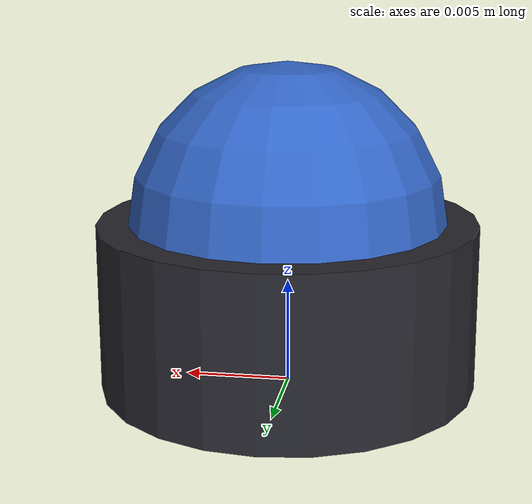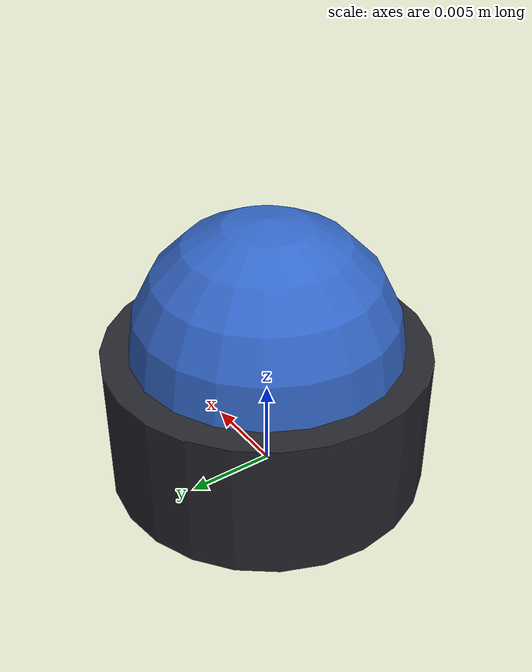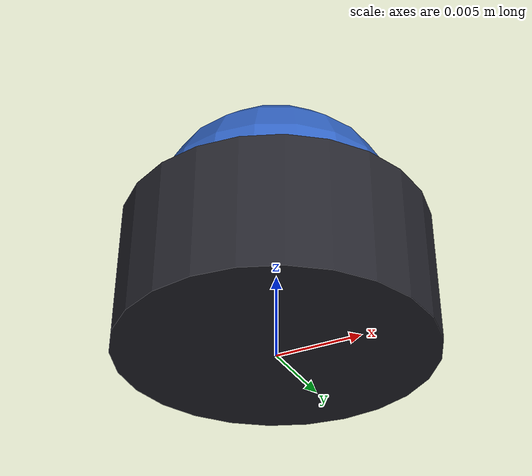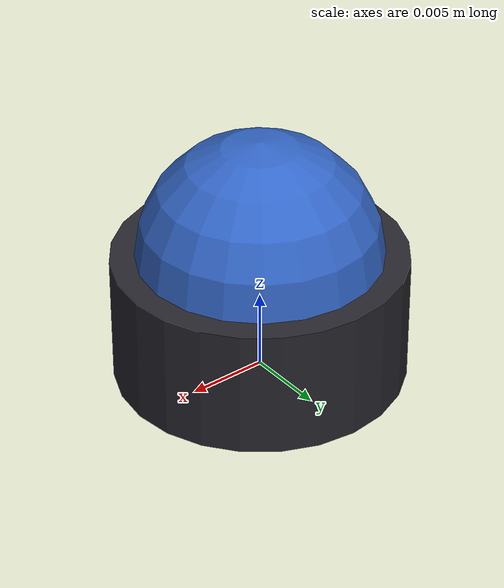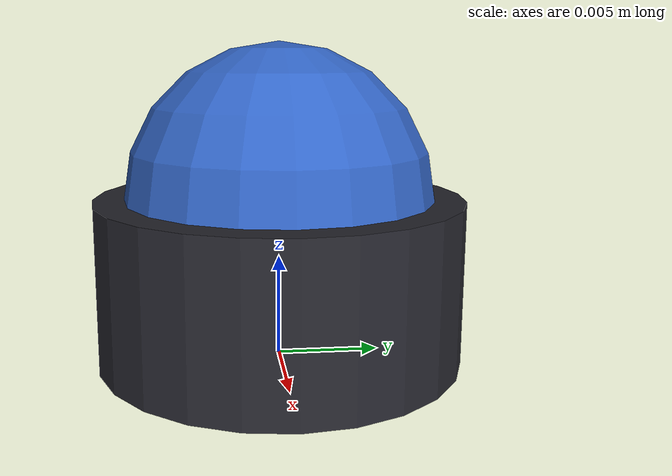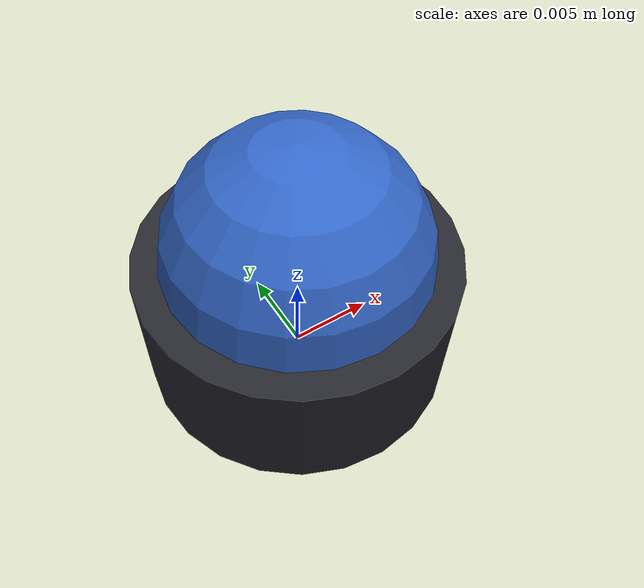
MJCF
<mujoco model="Switch_15">
  <asset>
    <material name="Switch_15_base" rgba="0.15 0.15 0.18 1"/>
    <material name="Switch_15_button" rgba="0.20 0.40 0.78 1"/>
  </asset>
  <worldbody>
    <body name="Switch_15">
      <geom name="Switch_15_base" type="cylinder"
            pos="0 0 0.004" size="0.009 0.004"
            material="Switch_15_base"/>
      <geom name="Switch_15_button" type="sphere"
            pos="0 0 0.008" size="0.0075"
            material="Switch_15_button"/>
    </body>
  </worldbody>
</mujoco>
